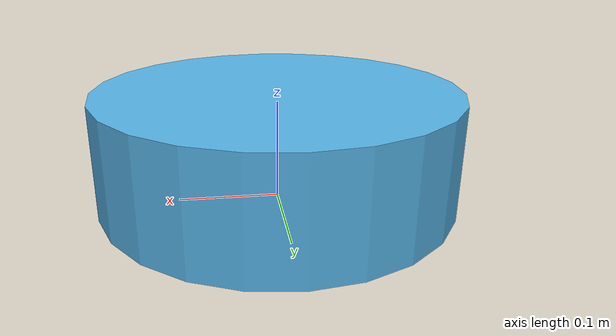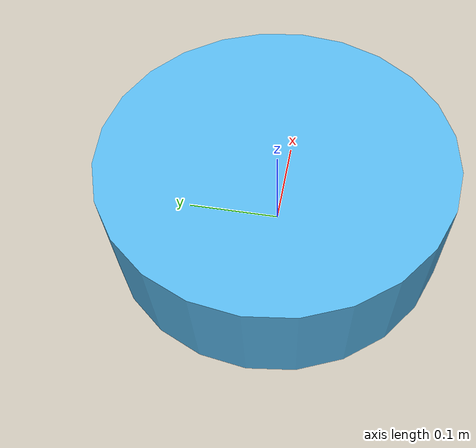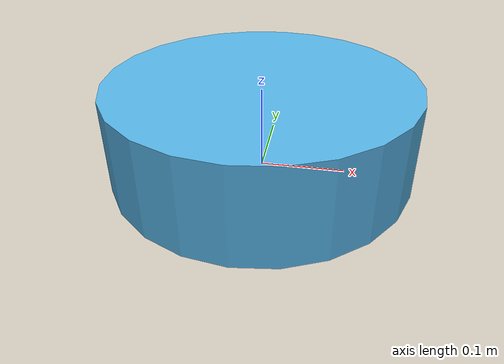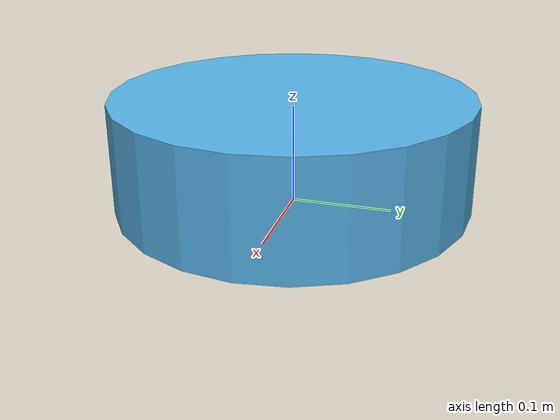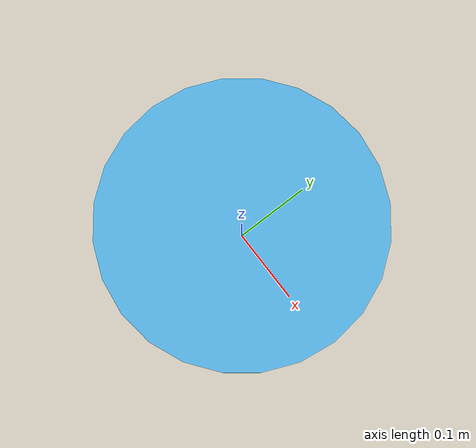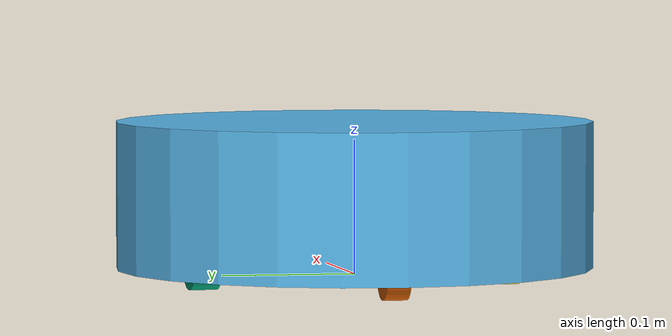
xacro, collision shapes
<?xml version="1.0"?>
<robot name="kobuki_standalone"
       xmlns:sensor="http://playerstage.sourceforge.net/gazebo/xmlschema/#sensor"
       xmlns:controller="http://playerstage.sourceforge.net/gazebo/xmlschema/#controller"
       xmlns:interface="http://playerstage.sourceforge.net/gazebo/xmlschema/#interface"
       xmlns:xacro="http://ros.org/wiki/xacro">
  <!-- Defines the kobuki component tag. -->
  <xacro:include filename="$(find namoros)/models/kobuki_description/urdf/kobuki.urdf.xacro" />
  <xacro:kobuki robot_name="test"/>
</robot>

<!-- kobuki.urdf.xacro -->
<robot name="kobuki" xmlns:xacro="http://ros.org/wiki/xacro">
  <xacro:include
    filename="$(find namoros)/models/kobuki_description/urdf/common_properties.urdf.xacro" />
  <xacro:include filename="$(find namoros)/models/kobuki_description/urdf/kobuki_gazebo.urdf.xacro" />
  <!-- Kobuki -->
  <xacro:macro name="kobuki" params="robot_name">

    <link name="base_footprint" />
    <joint name="base_joint" type="fixed">
      <origin xyz="0 0 0.0102" rpy="0 0 0" />
      <child link="base_footprint" />
      <parent link="base_link" />
    </joint>
    <link name="base_link">
      <visual>
        <geometry>
          <!-- new mesh -->
          <mesh filename="package://namoros/models/kobuki_description/meshes/main_body.dae" />
        </geometry>
        <origin xyz="0.001 0 0.05199" rpy="0 0 0" />
      </visual>
      <collision name="base">
        <geometry>
          <cylinder length="0.10938" radius="0.178" />
        </geometry>
        <origin xyz="0.0 0 0.05949" rpy="0 0 0" />
      </collision>
      <inertial>
        <!-- COM experimentally determined -->
        <origin xyz="0.01 0 0" />
        <mass value="2.4" /> <!-- 2.4/2.6 kg for small/big battery pack -->
        <inertia ixx="0.019995" ixy="0.0" ixz="0.0"
          iyy="0.019995" iyz="0.0"
          izz="0.03675" />
      </inertial>
    </link>

    <joint name="wheel_left_joint" type="continuous">
      <parent link="base_link" />
      <child link="wheel_left_link" />
      <origin xyz="0.00 ${0.23/2} 0.0250" rpy="${-M_PI/2} 0 0" />
      <axis xyz="0 0 1" />
    </joint>
    <link name="wheel_left_link">
      <visual>
        <geometry>
          <mesh filename="package://namoros/models/kobuki_description/meshes/wheel.dae" />
        </geometry>
        <origin xyz="0 0 0" rpy="0 0 0" />
      </visual>
      <collision>
        <geometry>
          <cylinder length="0.0206" radius="0.035" />
        </geometry>
        <origin rpy="0 0 0" xyz="0 0 0" />
      </collision>
      <inertial>
        <mass value="0.01" />
        <origin xyz="0 0 0" />
        <inertia ixx="0.001" ixy="0.0" ixz="0.0"
          iyy="0.001" iyz="0.0"
          izz="0.001" />
      </inertial>
    </link>

    <joint name="wheel_right_joint" type="continuous">
      <parent link="base_link" />
      <child link="wheel_right_link" />
      <origin xyz="0.00 -${0.23/2} 0.0250" rpy="${-M_PI/2} 0 0" />
      <axis xyz="0 0 1" />
    </joint>
    <link name="wheel_right_link">
      <visual>
        <geometry>
          <mesh filename="package://namoros/models/kobuki_description/meshes/wheel.dae" />
        </geometry>
        <origin xyz="0 0 0" rpy="0 0 0" />
      </visual>
      <collision>
        <geometry>
          <cylinder length="0.0206" radius="0.035" />
        </geometry>
        <origin rpy="0 0 0" xyz="0 0 0" />
      </collision>
      <inertial>
        <mass value="0.01" />
        <origin xyz="0 0 0" />
        <inertia ixx="0.001" ixy="0.0" ixz="0.0"
          iyy="0.001" iyz="0.0"
          izz="0.001" />
      </inertial>
    </link>

    <joint name="caster_front_joint" type="fixed">
      <parent link="base_link" />
      <child link="caster_front_link" />
      <origin xyz="0.115 0.0 0.007" rpy="${-M_PI/2} 0 0" />
    </joint>
    <link name="caster_front_link">
      <collision>
        <geometry>
          <cylinder length="0.0176" radius="0.017" />
        </geometry>
        <origin rpy="0 0 0" xyz="0 0 0" />
      </collision>
      <inertial>
        <mass value="0.01" />
        <origin xyz="0 0 0" />
        <inertia ixx="0.001" ixy="0.0" ixz="0.0"
          iyy="0.001" iyz="0.0"
          izz="0.001" />
      </inertial>
    </link>

    <joint name="caster_back_joint" type="fixed">
      <parent link="base_link" />
      <child link="caster_back_link" />
      <origin xyz="-0.135 0.0 0.009" rpy="${-M_PI/2} 0 0" />
    </joint>
    <link name="caster_back_link">
      <collision>
        <geometry>
          <cylinder length="0.0176" radius="0.017" />
        </geometry>
        <origin rpy="0 0 0" xyz="0 0 0" />
      </collision>
      <inertial>
        <mass value="0.01" />
        <origin xyz="0 0 0" />
        <inertia ixx="0.001" ixy="0.0" ixz="0.0"
          iyy="0.001" iyz="0.0"
          izz="0.001" />
      </inertial>
    </link>

    <!-- Kobuki's sensors -->
    <joint name="gyro_joint" type="fixed">
      <axis xyz="0 1 0" />
      <origin xyz="0.056 0.062 0.0202" rpy="0 0 0" />
      <parent link="base_link" />
      <child link="gyro_link" />
    </joint>
    <link name="gyro_link">
      <inertial>
        <mass value="0.001" />
        <origin xyz="0 0 0" rpy="0 0 0" />
        <inertia ixx="0.0001" ixy="0" ixz="0"
          iyy="0.000001" iyz="0"
          izz="0.0001" />
      </inertial>
    </link>

    <joint name="cliff_sensor_left_joint" type="fixed">
      <origin xyz="0.08734 0.13601 0.0214" rpy="0 ${M_PI/2} 0" />
      <parent link="base_link" />
      <child link="cliff_sensor_left_link" />
    </joint>
    <link name="cliff_sensor_left_link">
      <inertial>
        <mass value="0.0001" />
        <origin xyz="0 0 0" />
        <inertia ixx="0.0001" ixy="0.0" ixz="0.0"
          iyy="0.0001" iyz="0.0"
          izz="0.0001" />
      </inertial>
    </link>

    <joint name="cliff_sensor_right_joint" type="fixed">
      <origin xyz="0.085 -0.13601 0.0214" rpy="0 ${M_PI/2} 0" />
      <parent link="base_link" />
      <child link="cliff_sensor_right_link" />
    </joint>
    <link name="cliff_sensor_right_link">
      <inertial>
        <mass value="0.0001" />
        <origin xyz="0 0 0" />
        <inertia ixx="0.0001" ixy="0.0" ixz="0.0"
          iyy="0.0001" iyz="0.0"
          izz="0.0001" />
      </inertial>
    </link>

    <joint name="cliff_sensor_front_joint" type="fixed">
      <origin xyz="0.156 0.00 0.0214" rpy="0 ${M_PI/2} 0" />
      <parent link="base_link" />
      <child link="cliff_sensor_front_link" />
    </joint>
    <link name="cliff_sensor_front_link">
      <inertial>
        <mass value="0.0001" />
        <origin xyz="0 0 0" />
        <inertia ixx="0.0001" ixy="0.0" ixz="0.0"
          iyy="0.0001" iyz="0.0"
          izz="0.0001" />
      </inertial>
    </link>

    <!-- Kobuki Gazebo simulation details -->
    <xacro:kobuki_sim robot_name="${robot_name}" />

  </xacro:macro>
</robot>

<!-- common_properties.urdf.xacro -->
<!--
  Various useful properties such as constants and materials
 -->
<robot name="xacro_properties"
  xmlns:xacro="http://ros.org/wiki/xacro">
  <xacro:property name="M_PI" value="3.1415926535897931" />
  <xacro:property name="material_white">
    <material name="white">
      <color rgba="1 1 1 1" />
    </material>
  </xacro:property>
  <xacro:property name="material_grey">
    <material name="grey">
      <color rgba="0.5 0.5 0.5 1" />
    </material>
  </xacro:property>
  <xacro:property name="material_light_grey">
    <material name="light_grey">
      <color rgba="0.6 0.6 0.6 1" />
    </material>
  </xacro:property>
  <xacro:property name="material_dark_grey">
    <material name="dark_grey">
      <color rgba="0.3 0.3 0.3 1" />
    </material>
  </xacro:property>
  <xacro:property name="material_black">
    <material name="black">
      <color rgba="0.1 0.1 0.1 1" />
    </material>
  </xacro:property>
  <xacro:property name="material_red">
    <material name="red">
      <color rgba="1 0 0 1" />
    </material>
  </xacro:property>
  <xacro:property name="material_green">
    <material name="green">
      <color rgba="0.0 0.8 0.0 1" />
    </material>
  </xacro:property>
  <xacro:property name="material_blue">
    <material name="blue">
      <color rgba="0.0 0.0 1.0 1" />
    </material>
  </xacro:property>
  <xacro:property name="material_grey_blue">
    <material name="grey_blue">
      <color rgba="0.4 0.4 1.0 1" />
    </material>
  </xacro:property>
  <xacro:property name="material_orange">
    <material name="orange">
      <color rgba="1.0 0.7 0.0 1" />
    </material>
  </xacro:property>

  <xacro:macro name="inertial_cuboid_with_pose" params="mass x y z *origin">
    <inertial>
      <mass value="${mass}" />
      <xacro:insert_block name="origin" />
      <inertia ixx="${(1/12) * mass * (y*y + z*z)}" ixy="0.0" ixz="0.0"
        iyy="${(1/12) * mass * (x*x + z*z)}" iyz="0.0" izz="${(1/12) * mass * (x*x + y*y)}" />
    </inertial>
  </xacro:macro>

  <xacro:macro name="inertial_cuboid" params="mass x y z">
    <xacro:inertial_cuboid_with_pose mass="${mass}" x="${x}" y="${y}" z="${z}">
      <origin xyz="0 0 0" />
    </xacro:inertial_cuboid_with_pose>
  </xacro:macro>

  <xacro:macro name="inertial_cylinder_with_pose" params="mass radius length *origin">
    <inertial>
      <xacro:insert_block name="origin" />
      <mass value="${mass}" />
      <inertia ixx="${(1/12) * mass * (3*radius*radius + length*length)}" ixy="0.0" ixz="0.0"
        iyy="${(1/12) * mass * (3*radius*radius + length*length)}" iyz="0.0"
        izz="${(1/2) * mass * (radius*radius)}" />
    </inertial>
  </xacro:macro>

  <xacro:macro name="inertial_cylinder" params="mass radius length">
    <xacro:inertial_cylinder_with_pose mass="${mass}" radius="${radius}" length="${length}">
      <origin xyz="0 0 0" />
    </xacro:inertial_cylinder_with_pose>
  </xacro:macro>

  <xacro:macro name="inertial_sphere" params="mass radius">
    <inertial>
      <mass value="${mass}" />
      <inertia ixx="${(2/5) * mass * radius * radius}" ixy="0.0" ixz="0.0"
        iyy="${(2/5) * mass * radius * radius}" iyz="0.0" izz="${(2/5) * mass * radius * radius}" />
    </inertial>
  </xacro:macro>

  <xacro:macro name="inertial_dummy">
    <xacro:inertial_cuboid mass="0.01" x="0.01" y="0.01" z="0.01" />
  </xacro:macro>

  <xacro:macro name="ray_sensor"
    params="sensor_name update_rate visualize
            h_samples h_res h_min_angle h_max_angle v_samples:=1 v_res:=1 v_min_angle:=0 v_max_angle:=0
            r_min r_max r_res *plugin">

    <!-- gazebo -->
    <sensor name="${sensor_name}" type="gpu_lidar">
      <pose relative_to="rplidar_link">0 0 0 0 0 0</pose>
      <gz_frame_id>rplidar_link</gz_frame_id>
      <update_rate>30</update_rate>
      <visualize>${visualize}</visualize>
      <always_on>true</always_on>
      <lidar>
        <scan>
          <horizontal>
            <samples>${h_samples}</samples>
            <resolution>${h_res}</resolution>
            <min_angle>${h_min_angle}</min_angle>
            <max_angle>${h_max_angle}</max_angle>
          </horizontal>
          <vertical>
            <samples>${v_samples}</samples>
            <resolution>${v_res}</resolution>
            <min_angle>${v_min_angle}</min_angle>
            <max_angle>${v_max_angle}</max_angle>
          </vertical>
        </scan>
        <range>
          <min>${r_min}</min>
          <max>${r_max}</max>
          <resolution>${r_res}</resolution>
        </range>
      </lidar>
    </sensor>
  </xacro:macro>

  <!-- Conversion macros -->
  <xacro:property name="cm2m" value="${1/100.0}" />
  <xacro:property name="mm2m" value="${1/1000.0}" />
  <xacro:property name="in2m" value="0.0254" />
  <xacro:property name="deg2rad" value="${pi/180.0}" />

  <!-- Material macros -->
  <xacro:macro name="material_black">
    <visual>
      <material>
        <diffuse>0 0 0 1</diffuse>
        <specular>${80/255} ${80/255} ${80/255} 1</specular>
        <emissive>0 0 0 1</emissive>
      </material>
    </visual>
  </xacro:macro>

  <xacro:macro name="material_darkgray">
    <visual>
      <material>
        <diffuse>${3/255} ${3/255} ${3/255} 1</diffuse>
        <specular>0 0 0 1</specular>
        <emissive>0 0 0 1</emissive>
      </material>
    </visual>
  </xacro:macro>
</robot>
